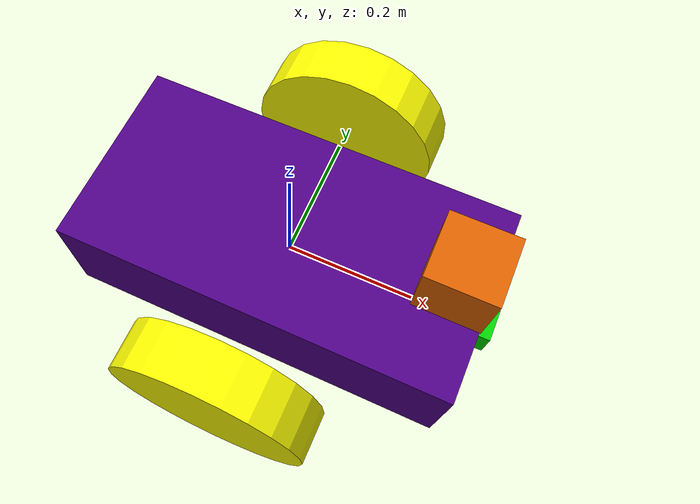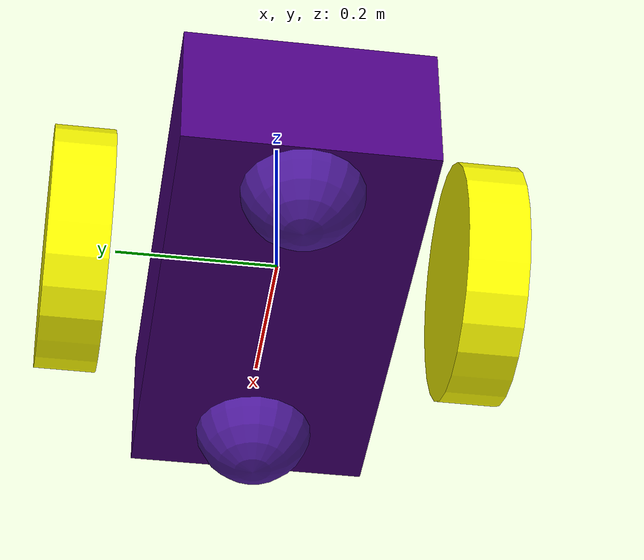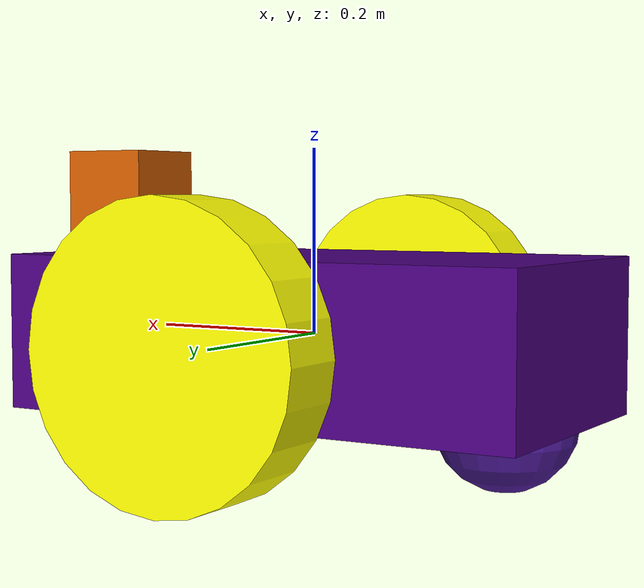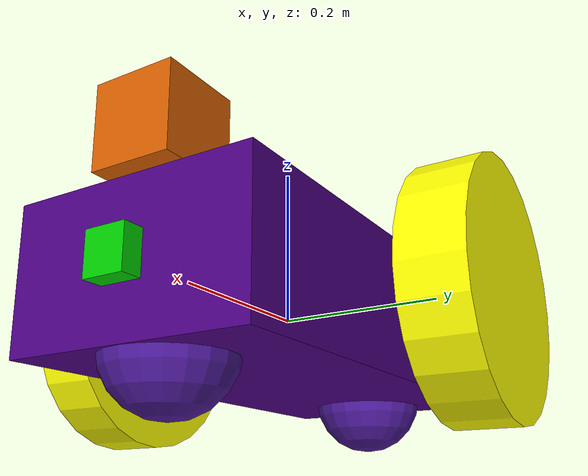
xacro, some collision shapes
<?xml version='1.0'?>

<robot name="my_robot" xmlns:xacro="http://www.ros.org/wiki/xacro">

  <xacro:include filename="$(find my_robot)/urdf/my_robot.gazebo" />
  <xacro:include filename="$(find my_robot)/urdf/materials.xacro" />

  <gazebo reference = 'chassis'>
    <material> Gazebo/Indigo </material>
  </gazebo>

  <gazebo reference = 'left_wheel'>
    <material> Gazebo/Yellow </material>
  </gazebo>

  <gazebo reference = 'right_wheel'>
    <material> Gazebo/Yellow </material>
  </gazebo>

  <gazebo reference = 'camera'>
    <material> Gazebo/Green </material>
  </gazebo>

  <link name="robot_footprint"></link>

  <joint name="robot_footprint_joint" type="fixed">
    <origin xyz="0 0 0" rpy="0 0 0" />
    <parent link="robot_footprint"/>
    <child link="chassis" />
  </joint>

  <link name='chassis'>
    <pose>0 0 0.1 0 0 0</pose>

    <inertial>
      <mass value="15.0"/>
      <origin xyz="0.0 0 0" rpy=" 0 0 0"/>
      <inertia
          ixx="0.1" ixy="0" ixz="0"
          iyy="0.1" iyz="0"
          izz="0.1"
      />
    </inertial>

    <collision name='chassis_collision'>
      <origin xyz="0 0 0" rpy=" 0 0 0"/>
      <geometry>
        <box size=".6 .3 .17"/>
      </geometry>
    </collision>

    <visual name='chassis_visual'>
      <origin xyz="0 0 0" rpy=" 0 0 0"/>
      <geometry>
        <box size=".6 .3 .17"/>
      </geometry>
    <material name="indigo"/>
    </visual>

    <collision name='back_caster_collision'>
      <origin xyz="-0.225 0 -0.075" rpy=" 0 0 0"/>
      <geometry>
        <sphere radius="0.0749"/>
      </geometry>
    </collision>

    <visual name='back_caster_visual'>
      <origin xyz="-0.225 0 -0.075" rpy=" 0 0 0"/>
      <geometry>
        <sphere radius="0.075"/>
      </geometry>
    </visual>

    <collision name='front_caster_collision'>
      <origin xyz="0.225 0 -0.075" rpy=" 0 0 0"/>
      <geometry>
        <sphere radius="0.0749"/>
      </geometry>
    </collision>

    <visual name='front_caster_visual'>
      <origin xyz="0.225 0 -0.075" rpy=" 0 0 0"/>
      <geometry>
        <sphere radius="0.075"/>
      </geometry>
    </visual>

  </link>

  <link name='left_wheel'>
   <inertial>
      <mass value="5.0"/>
      <origin xyz="0 0 0" rpy="0 1.5707 1.5707"/>
      <inertia
          ixx="0.1" ixy="0" ixz="0"
          iyy="0.1" iyz="0"
          izz="0.1"
      />
    </inertial>

    <collision name='left_wheel_collision'>
       <origin xyz="0 0 0" rpy="0 1.5707 1.5707"/>
       <geometry>
         <cylinder length="0.075" radius="0.15"/>
       </geometry>
    </collision>

    <visual name='left_wheel_visual'>
      <origin xyz="0 0 0" rpy="0 1.5707 1.5707"/>
      <geometry>
        <cylinder length="0.075" radius="0.15"/>
      </geometry>
    <material name="yellow"/>
    </visual>

  </link>

  <joint type="continuous" name="left_wheel_hinge">
    <origin xyz="0 0.25 0" rpy="0 0 0"/>
    <child link="left_wheel"/>
    <parent link="chassis"/>
    <axis xyz="0 1 0" rpy="0 0 0"/>
    <limit effort="10000" velocity="1000"/>
    <dynamics damping="1.0" friction="1.0"/>
  </joint>

  <link name='right_wheel'>
   <inertial>
      <mass value="5.0"/>
      <origin xyz="0 0 0" rpy="0 1.5707 1.5707"/>
      <inertia
          ixx="0.1" ixy="0" ixz="0"
          iyy="0.1" iyz="0"
          izz="0.1"
      />
    </inertial>

    <collision name='right_wheel_collision'>
       <origin xyz="0 0 0" rpy="0 1.5707 1.5707"/>
       <geometry>
         <cylinder length="0.075" radius="0.15"/>
       </geometry>
    </collision>

    <visual name='right_wheel_visual'>
      <origin xyz="0 0 0" rpy="0 1.5707 1.5707"/>
      <geometry>
        <cylinder length="0.075" radius="0.15"/>
      </geometry>
    <material name="yellow"/>
    </visual>

  </link>

  <joint type="continuous" name="right_wheel_hinge">
    <origin xyz="0 -0.25 0" rpy="0 0 0"/>
    <child link="right_wheel"/>
    <parent link="chassis"/>
    <axis xyz="0 1 0" rpy="0 0 0"/>
    <limit effort="10000" velocity="1000"/>
    <dynamics damping="1.0" friction="1.0"/>
  </joint>

  <link name='camera'>
   <inertial>
      <mass value="0.1"/>
      <origin xyz="0 0 0" rpy="0 0 0"/>
      <inertia
          ixx="1e-6" ixy="0" ixz="0"
          iyy="1e-6" iyz="0"
          izz="1e-6"
      />
    </inertial>

    <collision name='camera_collision'>
       <origin xyz="0 0 0" rpy="0 0 0"/>
       <geometry>
         <box size="0.05 0.05 0.05"/>
       </geometry>
    </collision>

    <visual name='camera_visual'>
      <origin xyz="0 0 0" rpy="0 0 0"/>
      <geometry>
        <box size="0.05 0.05 0.05"/>
      </geometry>
    <material name="green"/>
    </visual>

  </link>

  <joint name="camera_joint" type="fixed">
	<origin xyz="0.3 0 0" rpy="0 0 0" />
	<child link="camera" />
	<parent link="chassis" />
	<axis xyz="0 1 0" />
  </joint>

  <link name='hokuyo'>
   <inertial>
      <mass value="1e-5"/>
      <origin xyz="0 0 0" rpy="0 0 0"/>
      <inertia
          ixx="1e-6" ixy="0" ixz="0"
          iyy="1e-6" iyz="0"
          izz="1e-6"
      />
    </inertial>

    <collision name='hokuyo_collision'>
       <origin xyz="0 0 0" rpy="0 0 0"/>
       <geometry>
         <box size="0.1 0.1 0.1"/>
       </geometry>
    </collision>

    <visual name='hokuyo_visual'>
       <origin xyz="0 0 0" rpy="0 0 0"/>
       <geometry>
         <mesh filename = "package://my_robot/meshes/hokuyo.dae"/>
       </geometry>
    </visual>
  </link>

  <joint name="hokuyo" type="fixed">
	<origin xyz="0.25 0 0.15" rpy="0 0 0" />
	<child link="hokuyo" />
	<parent link="chassis" />
        <axis xyz="0 1 0" />
  </joint>

</robot>

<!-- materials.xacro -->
<robot>

  <material name="black">
    <color rgba="0.0 0.0 0.0 1.0"/>
  </material>

  <material name="blue">
    <color rgba="0.0 0.0 0.8 1.0"/>
  </material>

  <material name="green">
    <color rgba="0.0 0.8 0.0 1.0"/>
  </material>

  <material name="grey">
    <color rgba="0.2 0.2 0.2 1.0"/>
  </material>

  <material name="orange">
    <color rgba="${255/255} ${108/255} ${10/255} 1.0"/>
  </material>

  <material name="brown">
    <color rgba="${222/255} ${207/255} ${195/255} 1.0"/>
  </material>

  <material name="red">
    <color rgba="0.8 0.0 0.0 1.0"/>
  </material>

  <material name="white">
    <color rgba="1.0 1.0 1.0 1.0"/>
  </material>

  <material name="yellow">
    <color rgba="1.0 1.0 0.0 1.0"/>
  </material>

  <material name="indigo">
    <color rgba="${75/255} ${0/255} ${130/255} 1.0"/>
  </material>

</robot>
